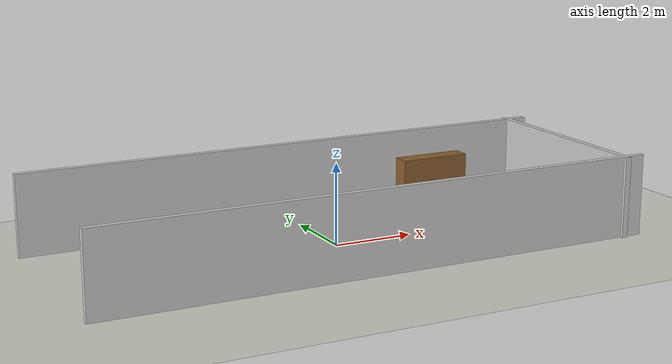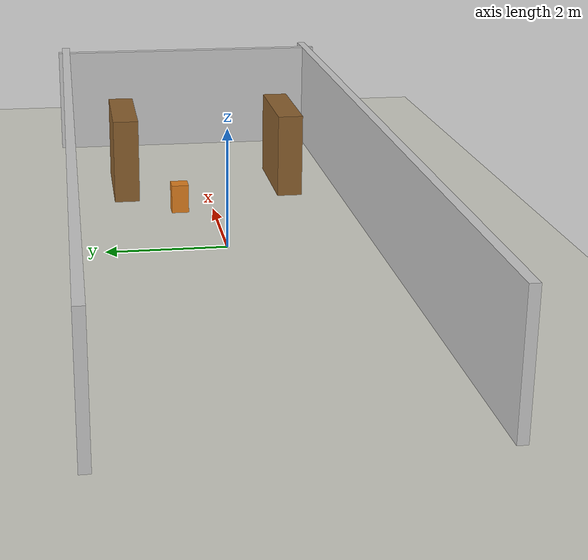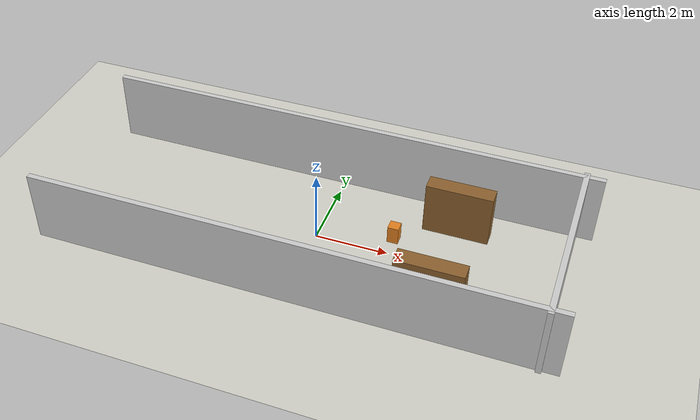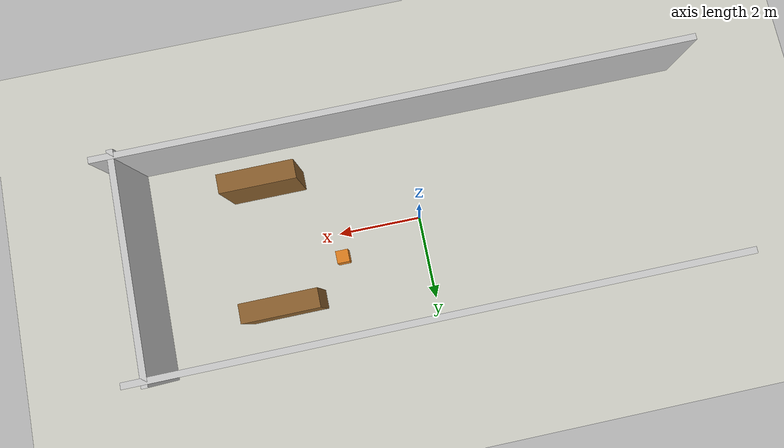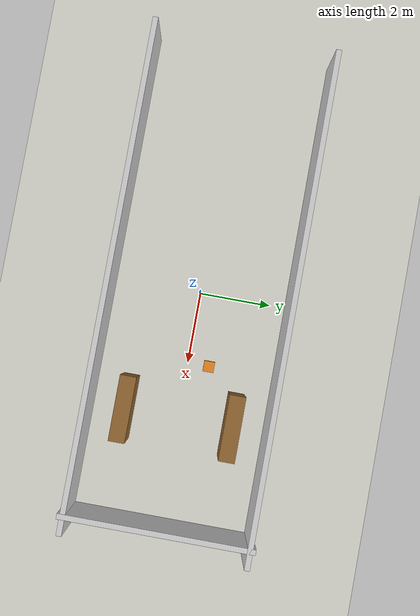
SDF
<?xml version="1.0" ?>
<!--
  supermarket.sdf  -  Static supermarket environment only
  Person/actor is spawned separately via person_actor.sdf
  Future dynamic background actors will also be separate SDF files
-->
<sdf version="1.10">
  <world name="supermarket">

    <physics name="1ms" type="ignored">
      <max_step_size>0.004</max_step_size>
      <real_time_factor>1.0</real_time_factor>
      <real_time_update_rate>250</real_time_update_rate>
    </physics>

    <plugin filename="gz-sim-physics-system"        name="gz::sim::systems::Physics"/>
    <plugin filename="gz-sim-user-commands-system"  name="gz::sim::systems::UserCommands"/>
    <plugin filename="gz-sim-scene-broadcaster-system" name="gz::sim::systems::SceneBroadcaster"/>
    <plugin filename="gz-sim-sensors-system"        name="gz::sim::systems::Sensors">
      <render_engine>ogre2</render_engine>
    </plugin>
    <plugin filename="gz-sim-contact-system"        name="gz::sim::systems::Contact"/>

    <!-- ── Lighting ─────────────────────────────────────────────────────── -->
    <light type="directional" name="sun">
      <cast_shadows>true</cast_shadows>
      <pose>0 0 10 0 0 0</pose>
      <diffuse>0.9 0.9 0.9 1</diffuse>
      <specular>0.3 0.3 0.3 1</specular>
      <direction>-0.5 0.1 -0.9</direction>
      <attenuation><range>1000</range><constant>0.9</constant><linear>0.01</linear><quadratic>0.001</quadratic></attenuation>
    </light>

    <light type="point" name="fill">
      <pose>3 0 4 0 0 0</pose>
      <diffuse>0.4 0.4 0.4 1</diffuse>
      <specular>0.1 0.1 0.1 1</specular>
      <attenuation><range>20</range><constant>0.5</constant><linear>0.05</linear><quadratic>0.01</quadratic></attenuation>
    </light>

    <!-- ── Ground ───────────────────────────────────────────────────────── -->
    <model name="ground_plane">
      <static>true</static>
      <link name="link">
        <collision name="col">
          <geometry><plane><normal>0 0 1</normal><size>100 100</size></plane></geometry>
          <surface><friction><ode><mu>0.6</mu><mu2>0.6</mu2></ode></friction></surface>
        </collision>
        <visual name="vis">
          <geometry><plane><normal>0 0 1</normal><size>100 100</size></plane></geometry>
          <material><ambient>0.82 0.82 0.78 1</ambient><diffuse>0.82 0.82 0.78 1</diffuse></material>
        </visual>
      </link>
    </model>

    <!-- ── Walls ─────────────────────────────────────────────────────────── -->
    <model name="left_wall">
      <static>true</static><pose>0 2.5 1.0 0 0 0</pose>
      <link name="link">
        <collision name="col"><geometry><box><size>14 0.15 2.0</size></box></geometry></collision>
        <visual name="vis">
          <geometry><box><size>14 0.15 2.0</size></box></geometry>
          <material><ambient>0.80 0.80 0.80 1</ambient><diffuse>0.80 0.80 0.80 1</diffuse></material>
        </visual>
      </link>
    </model>

    <model name="right_wall">
      <static>true</static><pose>0 -2.5 1.0 0 0 0</pose>
      <link name="link">
        <collision name="col"><geometry><box><size>14 0.15 2.0</size></box></geometry></collision>
        <visual name="vis">
          <geometry><box><size>14 0.15 2.0</size></box></geometry>
          <material><ambient>0.80 0.80 0.80 1</ambient><diffuse>0.80 0.80 0.80 1</diffuse></material>
        </visual>
      </link>
    </model>

    <model name="back_wall">
      <static>true</static><pose>6.5 0 1.0 0 0 0</pose>
      <link name="link">
        <collision name="col"><geometry><box><size>0.15 5.3 2.0</size></box></geometry></collision>
        <visual name="vis">
          <geometry><box><size>0.15 5.3 2.0</size></box></geometry>
          <material><ambient>0.80 0.80 0.80 1</ambient><diffuse>0.80 0.80 0.80 1</diffuse></material>
        </visual>
      </link>
    </model>

    <!-- ── Shelves ───────────────────────────────────────────────────────── -->
    <model name="shelf_left">
      <static>true</static><pose>3.5 1.5 0.75 0 0 0</pose>
      <link name="link">
        <collision name="col"><geometry><box><size>1.8 0.45 1.5</size></box></geometry></collision>
        <visual name="vis">
          <geometry><box><size>1.8 0.45 1.5</size></box></geometry>
          <material><ambient>0.55 0.38 0.18 1</ambient><diffuse>0.55 0.38 0.18 1</diffuse></material>
        </visual>
      </link>
    </model>

    <model name="shelf_right">
      <static>true</static><pose>3.5 -1.5 0.75 0 0 0</pose>
      <link name="link">
        <collision name="col"><geometry><box><size>1.8 0.45 1.5</size></box></geometry></collision>
        <visual name="vis">
          <geometry><box><size>1.8 0.45 1.5</size></box></geometry>
          <material><ambient>0.55 0.38 0.18 1</ambient><diffuse>0.55 0.38 0.18 1</diffuse></material>
        </visual>
      </link>
    </model>

    <!-- ── Mid-aisle obstacle ────────────────────────────────────────────── -->
    <model name="obstacle_box">
      <static>true</static><pose>2.0 0.6 0.25 0 0 0</pose>
      <link name="link">
        <collision name="col"><geometry><box><size>0.3 0.3 0.5</size></box></geometry></collision>
        <visual name="vis">
          <geometry><box><size>0.3 0.3 0.5</size></box></geometry>
          <material><ambient>0.88 0.50 0.12 1</ambient><diffuse>0.88 0.50 0.12 1</diffuse></material>
        </visual>
      </link>
    </model>

    <!-- ── UWB beacon ring (visual only - marks person spawn point) ──────── -->

  </world>
</sdf>
